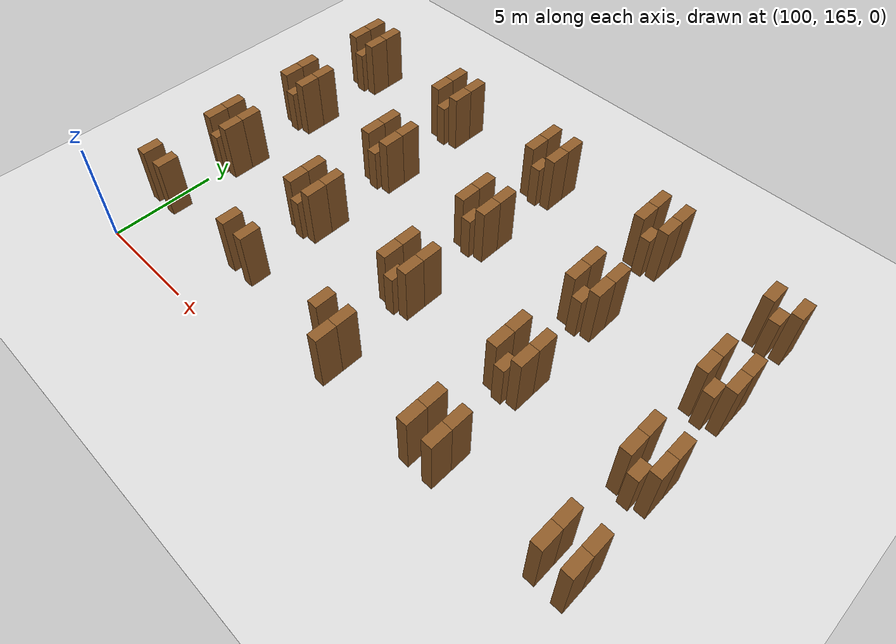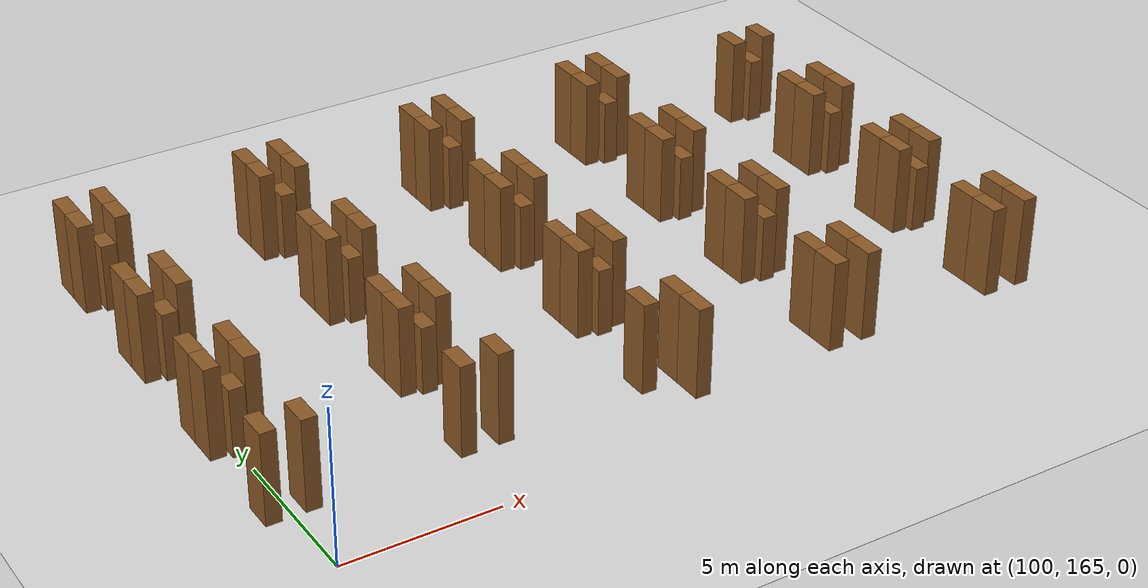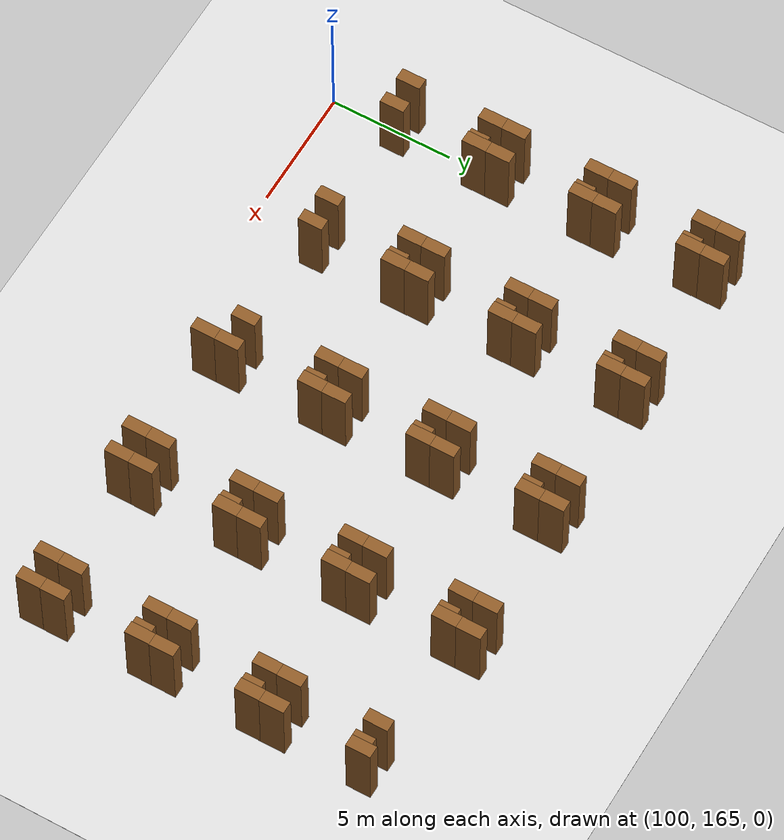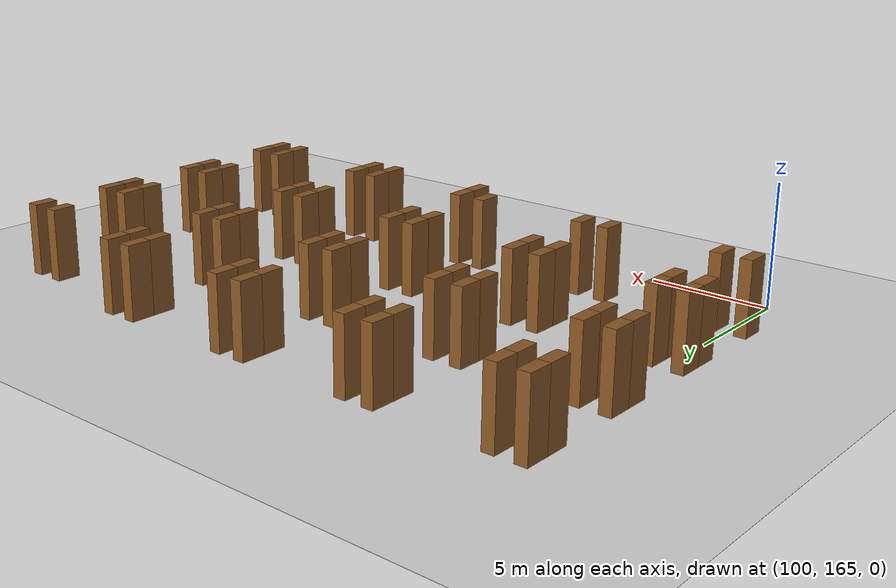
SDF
<sdf version="1.9">
 <world name="realistic_warehouse_150x200m">
  <model name="ground_plane">
   <static>true</static>
   <pose>68.5 102.0 0 0 0 0</pose>
   <link name="ground_link">
    <visual name="ground_visual">
     <geometry><box><size>127.0 194.0 0.01</size></box></geometry>
     <material><ambient>0.85 0.85 0.85 1.0</ambient><diffuse>0.85 0.85 0.85 1.0</diffuse></material>
    </visual>
    <collision name="ground_visual_collision">
     <geometry><box><size>127.0 194.0 0.01</size></box></geometry>
    </collision>
    <collision name="ground_collision">
     <geometry><plane><normal>0 0 1</normal><size>127.0 194.0</size></plane></geometry>
    </collision>
   </link>
  </model>
  <model name="rack_Zone_C_A0_S1_464">
   <static>true</static>
   <pose>99.4 168.0 1.5 0 0 0</pose>
   <link name="rack_Zone_C_A0_S1_464_link">
    <visual name="rack_Zone_C_A0_S1_464_vis">
     <geometry><box><size>0.5 1.0 3.0</size></box></geometry>
     <material><ambient>0.55 0.35 0.15 1.0</ambient><diffuse>0.55 0.35 0.15 1.0</diffuse></material>
    </visual>
    <collision name="rack_Zone_C_A0_S1_464_vis_collision">
     <geometry><box><size>0.5 1.0 3.0</size></box></geometry>
    </collision>
   </link>
  </model>
  <model name="rack_Zone_C_A0_S1_466">
   <static>true</static>
   <pose>100.6 168.0 1.5 0 0 0</pose>
   <link name="rack_Zone_C_A0_S1_466_link">
    <visual name="rack_Zone_C_A0_S1_466_vis">
     <geometry><box><size>0.5 1.0 3.0</size></box></geometry>
     <material><ambient>0.55 0.35 0.15 1.0</ambient><diffuse>0.55 0.35 0.15 1.0</diffuse></material>
    </visual>
    <collision name="rack_Zone_C_A0_S1_466_vis_collision">
     <geometry><box><size>0.5 1.0 3.0</size></box></geometry>
    </collision>
   </link>
  </model>
  <model name="rack_Zone_C_A0_S2_468">
   <static>true</static>
   <pose>99.4 171.5 1.5 0 0 0</pose>
   <link name="rack_Zone_C_A0_S2_468_link">
    <visual name="rack_Zone_C_A0_S2_468_vis">
     <geometry><box><size>0.5 1.0 3.0</size></box></geometry>
     <material><ambient>0.55 0.35 0.15 1.0</ambient><diffuse>0.55 0.35 0.15 1.0</diffuse></material>
    </visual>
    <collision name="rack_Zone_C_A0_S2_468_vis_collision">
     <geometry><box><size>0.5 1.0 3.0</size></box></geometry>
    </collision>
   </link>
  </model>
  <model name="rack_Zone_C_A0_S2_469">
   <static>true</static>
   <pose>99.4 172.5 1.5 0 0 0</pose>
   <link name="rack_Zone_C_A0_S2_469_link">
    <visual name="rack_Zone_C_A0_S2_469_vis">
     <geometry><box><size>0.5 1.0 3.0</size></box></geometry>
     <material><ambient>0.55 0.35 0.15 1.0</ambient><diffuse>0.55 0.35 0.15 1.0</diffuse></material>
    </visual>
    <collision name="rack_Zone_C_A0_S2_469_vis_collision">
     <geometry><box><size>0.5 1.0 3.0</size></box></geometry>
    </collision>
   </link>
  </model>
  <model name="rack_Zone_C_A0_S2_470">
   <static>true</static>
   <pose>100.6 171.5 1.5 0 0 0</pose>
   <link name="rack_Zone_C_A0_S2_470_link">
    <visual name="rack_Zone_C_A0_S2_470_vis">
     <geometry><box><size>0.5 1.0 3.0</size></box></geometry>
     <material><ambient>0.55 0.35 0.15 1.0</ambient><diffuse>0.55 0.35 0.15 1.0</diffuse></material>
    </visual>
    <collision name="rack_Zone_C_A0_S2_470_vis_collision">
     <geometry><box><size>0.5 1.0 3.0</size></box></geometry>
    </collision>
   </link>
  </model>
  <model name="rack_Zone_C_A0_S2_471">
   <static>true</static>
   <pose>100.6 172.5 1.5 0 0 0</pose>
   <link name="rack_Zone_C_A0_S2_471_link">
    <visual name="rack_Zone_C_A0_S2_471_vis">
     <geometry><box><size>0.5 1.0 3.0</size></box></geometry>
     <material><ambient>0.55 0.35 0.15 1.0</ambient><diffuse>0.55 0.35 0.15 1.0</diffuse></material>
    </visual>
    <collision name="rack_Zone_C_A0_S2_471_vis_collision">
     <geometry><box><size>0.5 1.0 3.0</size></box></geometry>
    </collision>
   </link>
  </model>
  <model name="rack_Zone_C_A0_S2_472">
   <static>true</static>
   <pose>100.0 171.2 1.125 0 0 0</pose>
   <link name="rack_Zone_C_A0_S2_472_link">
    <visual name="rack_Zone_C_A0_S2_472_vis">
     <geometry><box><size>0.5 0.8 2.25</size></box></geometry>
     <material><ambient>0.55 0.35 0.15 1.0</ambient><diffuse>0.55 0.35 0.15 1.0</diffuse></material>
    </visual>
    <collision name="rack_Zone_C_A0_S2_472_vis_collision">
     <geometry><box><size>0.5 0.8 2.25</size></box></geometry>
    </collision>
   </link>
  </model>
  <model name="rack_Zone_C_A0_S3_473">
   <static>true</static>
   <pose>99.4 176.0 1.5 0 0 0</pose>
   <link name="rack_Zone_C_A0_S3_473_link">
    <visual name="rack_Zone_C_A0_S3_473_vis">
     <geometry><box><size>0.5 1.0 3.0</size></box></geometry>
     <material><ambient>0.55 0.35 0.15 1.0</ambient><diffuse>0.55 0.35 0.15 1.0</diffuse></material>
    </visual>
    <collision name="rack_Zone_C_A0_S3_473_vis_collision">
     <geometry><box><size>0.5 1.0 3.0</size></box></geometry>
    </collision>
   </link>
  </model>
  <model name="rack_Zone_C_A0_S3_474">
   <static>true</static>
   <pose>99.4 177.0 1.5 0 0 0</pose>
   <link name="rack_Zone_C_A0_S3_474_link">
    <visual name="rack_Zone_C_A0_S3_474_vis">
     <geometry><box><size>0.5 1.0 3.0</size></box></geometry>
     <material><ambient>0.55 0.35 0.15 1.0</ambient><diffuse>0.55 0.35 0.15 1.0</diffuse></material>
    </visual>
    <collision name="rack_Zone_C_A0_S3_474_vis_collision">
     <geometry><box><size>0.5 1.0 3.0</size></box></geometry>
    </collision>
   </link>
  </model>
  <model name="rack_Zone_C_A0_S3_475">
   <static>true</static>
   <pose>100.6 176.0 1.5 0 0 0</pose>
   <link name="rack_Zone_C_A0_S3_475_link">
    <visual name="rack_Zone_C_A0_S3_475_vis">
     <geometry><box><size>0.5 1.0 3.0</size></box></geometry>
     <material><ambient>0.55 0.35 0.15 1.0</ambient><diffuse>0.55 0.35 0.15 1.0</diffuse></material>
    </visual>
    <collision name="rack_Zone_C_A0_S3_475_vis_collision">
     <geometry><box><size>0.5 1.0 3.0</size></box></geometry>
    </collision>
   </link>
  </model>
  <model name="rack_Zone_C_A0_S3_476">
   <static>true</static>
   <pose>100.6 177.0 1.5 0 0 0</pose>
   <link name="rack_Zone_C_A0_S3_476_link">
    <visual name="rack_Zone_C_A0_S3_476_vis">
     <geometry><box><size>0.5 1.0 3.0</size></box></geometry>
     <material><ambient>0.55 0.35 0.15 1.0</ambient><diffuse>0.55 0.35 0.15 1.0</diffuse></material>
    </visual>
    <collision name="rack_Zone_C_A0_S3_476_vis_collision">
     <geometry><box><size>0.5 1.0 3.0</size></box></geometry>
    </collision>
   </link>
  </model>
  <model name="rack_Zone_C_A0_S3_477">
   <static>true</static>
   <pose>100.0 175.7 1.125 0 0 0</pose>
   <link name="rack_Zone_C_A0_S3_477_link">
    <visual name="rack_Zone_C_A0_S3_477_vis">
     <geometry><box><size>0.5 0.8 2.25</size></box></geometry>
     <material><ambient>0.55 0.35 0.15 1.0</ambient><diffuse>0.55 0.35 0.15 1.0</diffuse></material>
    </visual>
    <collision name="rack_Zone_C_A0_S3_477_vis_collision">
     <geometry><box><size>0.5 0.8 2.25</size></box></geometry>
    </collision>
   </link>
  </model>
  <model name="rack_Zone_C_A0_S4_478">
   <static>true</static>
   <pose>99.4 180.5 1.5 0 0 0</pose>
   <link name="rack_Zone_C_A0_S4_478_link">
    <visual name="rack_Zone_C_A0_S4_478_vis">
     <geometry><box><size>0.5 1.0 3.0</size></box></geometry>
     <material><ambient>0.55 0.35 0.15 1.0</ambient><diffuse>0.55 0.35 0.15 1.0</diffuse></material>
    </visual>
    <collision name="rack_Zone_C_A0_S4_478_vis_collision">
     <geometry><box><size>0.5 1.0 3.0</size></box></geometry>
    </collision>
   </link>
  </model>
  <model name="rack_Zone_C_A0_S4_479">
   <static>true</static>
   <pose>99.4 181.5 1.5 0 0 0</pose>
   <link name="rack_Zone_C_A0_S4_479_link">
    <visual name="rack_Zone_C_A0_S4_479_vis">
     <geometry><box><size>0.5 1.0 3.0</size></box></geometry>
     <material><ambient>0.55 0.35 0.15 1.0</ambient><diffuse>0.55 0.35 0.15 1.0</diffuse></material>
    </visual>
    <collision name="rack_Zone_C_A0_S4_479_vis_collision">
     <geometry><box><size>0.5 1.0 3.0</size></box></geometry>
    </collision>
   </link>
  </model>
  <model name="rack_Zone_C_A0_S4_480">
   <static>true</static>
   <pose>100.6 180.5 1.5 0 0 0</pose>
   <link name="rack_Zone_C_A0_S4_480_link">
    <visual name="rack_Zone_C_A0_S4_480_vis">
     <geometry><box><size>0.5 1.0 3.0</size></box></geometry>
     <material><ambient>0.55 0.35 0.15 1.0</ambient><diffuse>0.55 0.35 0.15 1.0</diffuse></material>
    </visual>
    <collision name="rack_Zone_C_A0_S4_480_vis_collision">
     <geometry><box><size>0.5 1.0 3.0</size></box></geometry>
    </collision>
   </link>
  </model>
  <model name="rack_Zone_C_A0_S4_481">
   <static>true</static>
   <pose>100.6 181.5 1.5 0 0 0</pose>
   <link name="rack_Zone_C_A0_S4_481_link">
    <visual name="rack_Zone_C_A0_S4_481_vis">
     <geometry><box><size>0.5 1.0 3.0</size></box></geometry>
     <material><ambient>0.55 0.35 0.15 1.0</ambient><diffuse>0.55 0.35 0.15 1.0</diffuse></material>
    </visual>
    <collision name="rack_Zone_C_A0_S4_481_vis_collision">
     <geometry><box><size>0.5 1.0 3.0</size></box></geometry>
    </collision>
   </link>
  </model>
  <model name="rack_Zone_C_A0_S4_482">
   <static>true</static>
   <pose>100.0 180.2 1.125 0 0 0</pose>
   <link name="rack_Zone_C_A0_S4_482_link">
    <visual name="rack_Zone_C_A0_S4_482_vis">
     <geometry><box><size>0.5 0.8 2.25</size></box></geometry>
     <material><ambient>0.55 0.35 0.15 1.0</ambient><diffuse>0.55 0.35 0.15 1.0</diffuse></material>
    </visual>
    <collision name="rack_Zone_C_A0_S4_482_vis_collision">
     <geometry><box><size>0.5 0.8 2.25</size></box></geometry>
    </collision>
   </link>
  </model>
  <model name="rack_Zone_C_A1_S1_508">
   <static>true</static>
   <pose>105.4 168.0 1.5 0 0 0</pose>
   <link name="rack_Zone_C_A1_S1_508_link">
    <visual name="rack_Zone_C_A1_S1_508_vis">
     <geometry><box><size>0.5 1.0 3.0</size></box></geometry>
     <material><ambient>0.55 0.35 0.15 1.0</ambient><diffuse>0.55 0.35 0.15 1.0</diffuse></material>
    </visual>
    <collision name="rack_Zone_C_A1_S1_508_vis_collision">
     <geometry><box><size>0.5 1.0 3.0</size></box></geometry>
    </collision>
   </link>
  </model>
  <model name="rack_Zone_C_A1_S1_510">
   <static>true</static>
   <pose>106.6 168.0 1.5 0 0 0</pose>
   <link name="rack_Zone_C_A1_S1_510_link">
    <visual name="rack_Zone_C_A1_S1_510_vis">
     <geometry><box><size>0.5 1.0 3.0</size></box></geometry>
     <material><ambient>0.55 0.35 0.15 1.0</ambient><diffuse>0.55 0.35 0.15 1.0</diffuse></material>
    </visual>
    <collision name="rack_Zone_C_A1_S1_510_vis_collision">
     <geometry><box><size>0.5 1.0 3.0</size></box></geometry>
    </collision>
   </link>
  </model>
  <model name="rack_Zone_C_A1_S2_512">
   <static>true</static>
   <pose>105.4 171.5 1.5 0 0 0</pose>
   <link name="rack_Zone_C_A1_S2_512_link">
    <visual name="rack_Zone_C_A1_S2_512_vis">
     <geometry><box><size>0.5 1.0 3.0</size></box></geometry>
     <material><ambient>0.55 0.35 0.15 1.0</ambient><diffuse>0.55 0.35 0.15 1.0</diffuse></material>
    </visual>
    <collision name="rack_Zone_C_A1_S2_512_vis_collision">
     <geometry><box><size>0.5 1.0 3.0</size></box></geometry>
    </collision>
   </link>
  </model>
  <model name="rack_Zone_C_A1_S2_513">
   <static>true</static>
   <pose>105.4 172.5 1.5 0 0 0</pose>
   <link name="rack_Zone_C_A1_S2_513_link">
    <visual name="rack_Zone_C_A1_S2_513_vis">
     <geometry><box><size>0.5 1.0 3.0</size></box></geometry>
     <material><ambient>0.55 0.35 0.15 1.0</ambient><diffuse>0.55 0.35 0.15 1.0</diffuse></material>
    </visual>
    <collision name="rack_Zone_C_A1_S2_513_vis_collision">
     <geometry><box><size>0.5 1.0 3.0</size></box></geometry>
    </collision>
   </link>
  </model>
  <model name="rack_Zone_C_A1_S2_514">
   <static>true</static>
   <pose>106.6 171.5 1.5 0 0 0</pose>
   <link name="rack_Zone_C_A1_S2_514_link">
    <visual name="rack_Zone_C_A1_S2_514_vis">
     <geometry><box><size>0.5 1.0 3.0</size></box></geometry>
     <material><ambient>0.55 0.35 0.15 1.0</ambient><diffuse>0.55 0.35 0.15 1.0</diffuse></material>
    </visual>
    <collision name="rack_Zone_C_A1_S2_514_vis_collision">
     <geometry><box><size>0.5 1.0 3.0</size></box></geometry>
    </collision>
   </link>
  </model>
  <model name="rack_Zone_C_A1_S2_515">
   <static>true</static>
   <pose>106.6 172.5 1.5 0 0 0</pose>
   <link name="rack_Zone_C_A1_S2_515_link">
    <visual name="rack_Zone_C_A1_S2_515_vis">
     <geometry><box><size>0.5 1.0 3.0</size></box></geometry>
     <material><ambient>0.55 0.35 0.15 1.0</ambient><diffuse>0.55 0.35 0.15 1.0</diffuse></material>
    </visual>
    <collision name="rack_Zone_C_A1_S2_515_vis_collision">
     <geometry><box><size>0.5 1.0 3.0</size></box></geometry>
    </collision>
   </link>
  </model>
  <model name="rack_Zone_C_A1_S2_516">
   <static>true</static>
   <pose>106.0 171.2 1.125 0 0 0</pose>
   <link name="rack_Zone_C_A1_S2_516_link">
    <visual name="rack_Zone_C_A1_S2_516_vis">
     <geometry><box><size>0.5 0.8 2.25</size></box></geometry>
     <material><ambient>0.55 0.35 0.15 1.0</ambient><diffuse>0.55 0.35 0.15 1.0</diffuse></material>
    </visual>
    <collision name="rack_Zone_C_A1_S2_516_vis_collision">
     <geometry><box><size>0.5 0.8 2.25</size></box></geometry>
    </collision>
   </link>
  </model>
  <model name="rack_Zone_C_A1_S3_517">
   <static>true</static>
   <pose>105.4 176.0 1.5 0 0 0</pose>
   <link name="rack_Zone_C_A1_S3_517_link">
    <visual name="rack_Zone_C_A1_S3_517_vis">
     <geometry><box><size>0.5 1.0 3.0</size></box></geometry>
     <material><ambient>0.55 0.35 0.15 1.0</ambient><diffuse>0.55 0.35 0.15 1.0</diffuse></material>
    </visual>
    <collision name="rack_Zone_C_A1_S3_517_vis_collision">
     <geometry><box><size>0.5 1.0 3.0</size></box></geometry>
    </collision>
   </link>
  </model>
  <model name="rack_Zone_C_A1_S3_518">
   <static>true</static>
   <pose>105.4 177.0 1.5 0 0 0</pose>
   <link name="rack_Zone_C_A1_S3_518_link">
    <visual name="rack_Zone_C_A1_S3_518_vis">
     <geometry><box><size>0.5 1.0 3.0</size></box></geometry>
     <material><ambient>0.55 0.35 0.15 1.0</ambient><diffuse>0.55 0.35 0.15 1.0</diffuse></material>
    </visual>
    <collision name="rack_Zone_C_A1_S3_518_vis_collision">
     <geometry><box><size>0.5 1.0 3.0</size></box></geometry>
    </collision>
   </link>
  </model>
  <model name="rack_Zone_C_A1_S3_519">
   <static>true</static>
   <pose>106.6 176.0 1.5 0 0 0</pose>
   <link name="rack_Zone_C_A1_S3_519_link">
    <visual name="rack_Zone_C_A1_S3_519_vis">
     <geometry><box><size>0.5 1.0 3.0</size></box></geometry>
     <material><ambient>0.55 0.35 0.15 1.0</ambient><diffuse>0.55 0.35 0.15 1.0</diffuse></material>
    </visual>
    <collision name="rack_Zone_C_A1_S3_519_vis_collision">
     <geometry><box><size>0.5 1.0 3.0</size></box></geometry>
    </collision>
   </link>
  </model>
  <model name="rack_Zone_C_A1_S3_520">
   <static>true</static>
   <pose>106.6 177.0 1.5 0 0 0</pose>
   <link name="rack_Zone_C_A1_S3_520_link">
    <visual name="rack_Zone_C_A1_S3_520_vis">
     <geometry><box><size>0.5 1.0 3.0</size></box></geometry>
     <material><ambient>0.55 0.35 0.15 1.0</ambient><diffuse>0.55 0.35 0.15 1.0</diffuse></material>
    </visual>
    <collision name="rack_Zone_C_A1_S3_520_vis_collision">
     <geometry><box><size>0.5 1.0 3.0</size></box></geometry>
    </collision>
   </link>
  </model>
  <model name="rack_Zone_C_A1_S3_521">
   <static>true</static>
   <pose>106.0 175.7 1.125 0 0 0</pose>
   <link name="rack_Zone_C_A1_S3_521_link">
    <visual name="rack_Zone_C_A1_S3_521_vis">
     <geometry><box><size>0.5 0.8 2.25</size></box></geometry>
     <material><ambient>0.55 0.35 0.15 1.0</ambient><diffuse>0.55 0.35 0.15 1.0</diffuse></material>
    </visual>
    <collision name="rack_Zone_C_A1_S3_521_vis_collision">
     <geometry><box><size>0.5 0.8 2.25</size></box></geometry>
    </collision>
   </link>
  </model>
  <model name="rack_Zone_C_A1_S4_522">
   <static>true</static>
   <pose>105.4 180.5 1.5 0 0 0</pose>
   <link name="rack_Zone_C_A1_S4_522_link">
    <visual name="rack_Zone_C_A1_S4_522_vis">
     <geometry><box><size>0.5 1.0 3.0</size></box></geometry>
     <material><ambient>0.55 0.35 0.15 1.0</ambient><diffuse>0.55 0.35 0.15 1.0</diffuse></material>
    </visual>
    <collision name="rack_Zone_C_A1_S4_522_vis_collision">
     <geometry><box><size>0.5 1.0 3.0</size></box></geometry>
    </collision>
   </link>
  </model>
  <model name="rack_Zone_C_A1_S4_523">
   <static>true</static>
   <pose>105.4 181.5 1.5 0 0 0</pose>
   <link name="rack_Zone_C_A1_S4_523_link">
    <visual name="rack_Zone_C_A1_S4_523_vis">
     <geometry><box><size>0.5 1.0 3.0</size></box></geometry>
     <material><ambient>0.55 0.35 0.15 1.0</ambient><diffuse>0.55 0.35 0.15 1.0</diffuse></material>
    </visual>
    <collision name="rack_Zone_C_A1_S4_523_vis_collision">
     <geometry><box><size>0.5 1.0 3.0</size></box></geometry>
    </collision>
   </link>
  </model>
  <model name="rack_Zone_C_A1_S4_524">
   <static>true</static>
   <pose>106.6 180.5 1.5 0 0 0</pose>
   <link name="rack_Zone_C_A1_S4_524_link">
    <visual name="rack_Zone_C_A1_S4_524_vis">
     <geometry><box><size>0.5 1.0 3.0</size></box></geometry>
     <material><ambient>0.55 0.35 0.15 1.0</ambient><diffuse>0.55 0.35 0.15 1.0</diffuse></material>
    </visual>
    <collision name="rack_Zone_C_A1_S4_524_vis_collision">
     <geometry><box><size>0.5 1.0 3.0</size></box></geometry>
    </collision>
   </link>
  </model>
  <model name="rack_Zone_C_A1_S4_525">
   <static>true</static>
   <pose>106.6 181.5 1.5 0 0 0</pose>
   <link name="rack_Zone_C_A1_S4_525_link">
    <visual name="rack_Zone_C_A1_S4_525_vis">
     <geometry><box><size>0.5 1.0 3.0</size></box></geometry>
     <material><ambient>0.55 0.35 0.15 1.0</ambient><diffuse>0.55 0.35 0.15 1.0</diffuse></material>
    </visual>
    <collision name="rack_Zone_C_A1_S4_525_vis_collision">
     <geometry><box><size>0.5 1.0 3.0</size></box></geometry>
    </collision>
   </link>
  </model>
  <model name="rack_Zone_C_A1_S4_526">
   <static>true</static>
   <pose>106.0 180.2 1.125 0 0 0</pose>
   <link name="rack_Zone_C_A1_S4_526_link">
    <visual name="rack_Zone_C_A1_S4_526_vis">
     <geometry><box><size>0.5 0.8 2.25</size></box></geometry>
     <material><ambient>0.55 0.35 0.15 1.0</ambient><diffuse>0.55 0.35 0.15 1.0</diffuse></material>
    </visual>
    <collision name="rack_Zone_C_A1_S4_526_vis_collision">
     <geometry><box><size>0.5 0.8 2.25</size></box></geometry>
    </collision>
   </link>
  </model>
  <model name="rack_Zone_C_A2_S1_552">
   <static>true</static>
   <pose>111.4 168.0 1.5 0 0 0</pose>
   <link name="rack_Zone_C_A2_S1_552_link">
    <visual name="rack_Zone_C_A2_S1_552_vis">
     <geometry><box><size>0.5 1.0 3.0</size></box></geometry>
     <material><ambient>0.55 0.35 0.15 1.0</ambient><diffuse>0.55 0.35 0.15 1.0</diffuse></material>
    </visual>
    <collision name="rack_Zone_C_A2_S1_552_vis_collision">
     <geometry><box><size>0.5 1.0 3.0</size></box></geometry>
    </collision>
   </link>
  </model>
  <model name="rack_Zone_C_A2_S1_553">
   <static>true</static>
   <pose>112.6 167.0 1.5 0 0 0</pose>
   <link name="rack_Zone_C_A2_S1_553_link">
    <visual name="rack_Zone_C_A2_S1_553_vis">
     <geometry><box><size>0.5 1.0 3.0</size></box></geometry>
     <material><ambient>0.55 0.35 0.15 1.0</ambient><diffuse>0.55 0.35 0.15 1.0</diffuse></material>
    </visual>
    <collision name="rack_Zone_C_A2_S1_553_vis_collision">
     <geometry><box><size>0.5 1.0 3.0</size></box></geometry>
    </collision>
   </link>
  </model>
  <model name="rack_Zone_C_A2_S1_554">
   <static>true</static>
   <pose>112.6 168.0 1.5 0 0 0</pose>
   <link name="rack_Zone_C_A2_S1_554_link">
    <visual name="rack_Zone_C_A2_S1_554_vis">
     <geometry><box><size>0.5 1.0 3.0</size></box></geometry>
     <material><ambient>0.55 0.35 0.15 1.0</ambient><diffuse>0.55 0.35 0.15 1.0</diffuse></material>
    </visual>
    <collision name="rack_Zone_C_A2_S1_554_vis_collision">
     <geometry><box><size>0.5 1.0 3.0</size></box></geometry>
    </collision>
   </link>
  </model>
  <model name="rack_Zone_C_A2_S2_556">
   <static>true</static>
   <pose>111.4 171.5 1.5 0 0 0</pose>
   <link name="rack_Zone_C_A2_S2_556_link">
    <visual name="rack_Zone_C_A2_S2_556_vis">
     <geometry><box><size>0.5 1.0 3.0</size></box></geometry>
     <material><ambient>0.55 0.35 0.15 1.0</ambient><diffuse>0.55 0.35 0.15 1.0</diffuse></material>
    </visual>
    <collision name="rack_Zone_C_A2_S2_556_vis_collision">
     <geometry><box><size>0.5 1.0 3.0</size></box></geometry>
    </collision>
   </link>
  </model>
  <model name="rack_Zone_C_A2_S2_557">
   <static>true</static>
   <pose>111.4 172.5 1.5 0 0 0</pose>
   <link name="rack_Zone_C_A2_S2_557_link">
    <visual name="rack_Zone_C_A2_S2_557_vis">
     <geometry><box><size>0.5 1.0 3.0</size></box></geometry>
     <material><ambient>0.55 0.35 0.15 1.0</ambient><diffuse>0.55 0.35 0.15 1.0</diffuse></material>
    </visual>
    <collision name="rack_Zone_C_A2_S2_557_vis_collision">
     <geometry><box><size>0.5 1.0 3.0</size></box></geometry>
    </collision>
   </link>
  </model>
  <model name="rack_Zone_C_A2_S2_558">
   <static>true</static>
   <pose>112.6 171.5 1.5 0 0 0</pose>
   <link name="rack_Zone_C_A2_S2_558_link">
    <visual name="rack_Zone_C_A2_S2_558_vis">
     <geometry><box><size>0.5 1.0 3.0</size></box></geometry>
     <material><ambient>0.55 0.35 0.15 1.0</ambient><diffuse>0.55 0.35 0.15 1.0</diffuse></material>
    </visual>
    <collision name="rack_Zone_C_A2_S2_558_vis_collision">
     <geometry><box><size>0.5 1.0 3.0</size></box></geometry>
    </collision>
   </link>
  </model>
  <model name="rack_Zone_C_A2_S2_559">
   <static>true</static>
   <pose>112.6 172.5 1.5 0 0 0</pose>
   <link name="rack_Zone_C_A2_S2_559_link">
    <visual name="rack_Zone_C_A2_S2_559_vis">
     <geometry><box><size>0.5 1.0 3.0</size></box></geometry>
     <material><ambient>0.55 0.35 0.15 1.0</ambient><diffuse>0.55 0.35 0.15 1.0</diffuse></material>
    </visual>
    <collision name="rack_Zone_C_A2_S2_559_vis_collision">
     <geometry><box><size>0.5 1.0 3.0</size></box></geometry>
    </collision>
   </link>
  </model>
  <model name="rack_Zone_C_A2_S2_560">
   <static>true</static>
   <pose>112.0 171.2 1.125 0 0 0</pose>
   <link name="rack_Zone_C_A2_S2_560_link">
    <visual name="rack_Zone_C_A2_S2_560_vis">
     <geometry><box><size>0.5 0.8 2.25</size></box></geometry>
     <material><ambient>0.55 0.35 0.15 1.0</ambient><diffuse>0.55 0.35 0.15 1.0</diffuse></material>
    </visual>
    <collision name="rack_Zone_C_A2_S2_560_vis_collision">
     <geometry><box><size>0.5 0.8 2.25</size></box></geometry>
    </collision>
   </link>
  </model>
  <model name="rack_Zone_C_A2_S3_561">
   <static>true</static>
   <pose>111.4 176.0 1.5 0 0 0</pose>
   <link name="rack_Zone_C_A2_S3_561_link">
    <visual name="rack_Zone_C_A2_S3_561_vis">
     <geometry><box><size>0.5 1.0 3.0</size></box></geometry>
     <material><ambient>0.55 0.35 0.15 1.0</ambient><diffuse>0.55 0.35 0.15 1.0</diffuse></material>
    </visual>
    <collision name="rack_Zone_C_A2_S3_561_vis_collision">
     <geometry><box><size>0.5 1.0 3.0</size></box></geometry>
    </collision>
   </link>
  </model>
  <model name="rack_Zone_C_A2_S3_562">
   <static>true</static>
   <pose>111.4 177.0 1.5 0 0 0</pose>
   <link name="rack_Zone_C_A2_S3_562_link">
    <visual name="rack_Zone_C_A2_S3_562_vis">
     <geometry><box><size>0.5 1.0 3.0</size></box></geometry>
     <material><ambient>0.55 0.35 0.15 1.0</ambient><diffuse>0.55 0.35 0.15 1.0</diffuse></material>
    </visual>
    <collision name="rack_Zone_C_A2_S3_562_vis_collision">
     <geometry><box><size>0.5 1.0 3.0</size></box></geometry>
    </collision>
   </link>
  </model>
  <model name="rack_Zone_C_A2_S3_563">
   <static>true</static>
   <pose>112.6 176.0 1.5 0 0 0</pose>
   <link name="rack_Zone_C_A2_S3_563_link">
    <visual name="rack_Zone_C_A2_S3_563_vis">
     <geometry><box><size>0.5 1.0 3.0</size></box></geometry>
     <material><ambient>0.55 0.35 0.15 1.0</ambient><diffuse>0.55 0.35 0.15 1.0</diffuse></material>
    </visual>
    <collision name="rack_Zone_C_A2_S3_563_vis_collision">
     <geometry><box><size>0.5 1.0 3.0</size></box></geometry>
    </collision>
   </link>
  </model>
  <model name="rack_Zone_C_A2_S3_564">
   <static>true</static>
   <pose>112.6 177.0 1.5 0 0 0</pose>
   <link name="rack_Zone_C_A2_S3_564_link">
    <visual name="rack_Zone_C_A2_S3_564_vis">
     <geometry><box><size>0.5 1.0 3.0</size></box></geometry>
     <material><ambient>0.55 0.35 0.15 1.0</ambient><diffuse>0.55 0.35 0.15 1.0</diffuse></material>
    </visual>
    <collision name="rack_Zone_C_A2_S3_564_vis_collision">
     <geometry><box><size>0.5 1.0 3.0</size></box></geometry>
    </collision>
   </link>
  </model>
  <model name="rack_Zone_C_A2_S3_565">
   <static>true</static>
   <pose>112.0 175.7 1.125 0 0 0</pose>
   <link name="rack_Zone_C_A2_S3_565_link">
    <visual name="rack_Zone_C_A2_S3_565_vis">
     <geometry><box><size>0.5 0.8 2.25</size></box></geometry>
     <material><ambient>0.55 0.35 0.15 1.0</ambient><diffuse>0.55 0.35 0.15 1.0</diffuse></material>
    </visual>
    <collision name="rack_Zone_C_A2_S3_565_vis_collision">
     <geometry><box><size>0.5 0.8 2.25</size></box></geometry>
    </collision>
   </link>
  </model>
  <model name="rack_Zone_C_A2_S4_566">
   <static>true</static>
   <pose>111.4 180.5 1.5 0 0 0</pose>
   <link name="rack_Zone_C_A2_S4_566_link">
    <visual name="rack_Zone_C_A2_S4_566_vis">
     <geometry><box><size>0.5 1.0 3.0</size></box></geometry>
     <material><ambient>0.55 0.35 0.15 1.0</ambient><diffuse>0.55 0.35 0.15 1.0</diffuse></material>
    </visual>
    <collision name="rack_Zone_C_A2_S4_566_vis_collision">
     <geometry><box><size>0.5 1.0 3.0</size></box></geometry>
    </collision>
   </link>
  </model>
  <model name="rack_Zone_C_A2_S4_567">
   <static>true</static>
   <pose>111.4 181.5 1.5 0 0 0</pose>
   <link name="rack_Zone_C_A2_S4_567_link">
    <visual name="rack_Zone_C_A2_S4_567_vis">
     <geometry><box><size>0.5 1.0 3.0</size></box></geometry>
     <material><ambient>0.55 0.35 0.15 1.0</ambient><diffuse>0.55 0.35 0.15 1.0</diffuse></material>
    </visual>
    <collision name="rack_Zone_C_A2_S4_567_vis_collision">
     <geometry><box><size>0.5 1.0 3.0</size></box></geometry>
    </collision>
   </link>
  </model>
  <model name="rack_Zone_C_A2_S4_568">
   <static>true</static>
   <pose>112.6 180.5 1.5 0 0 0</pose>
   <link name="rack_Zone_C_A2_S4_568_link">
    <visual name="rack_Zone_C_A2_S4_568_vis">
     <geometry><box><size>0.5 1.0 3.0</size></box></geometry>
     <material><ambient>0.55 0.35 0.15 1.0</ambient><diffuse>0.55 0.35 0.15 1.0</diffuse></material>
    </visual>
    <collision name="rack_Zone_C_A2_S4_568_vis_collision">
     <geometry><box><size>0.5 1.0 3.0</size></box></geometry>
    </collision>
   </link>
  </model>
  <model name="rack_Zone_C_A2_S4_569">
   <static>true</static>
   <pose>112.6 181.5 1.5 0 0 0</pose>
   <link name="rack_Zone_C_A2_S4_569_link">
    <visual name="rack_Zone_C_A2_S4_569_vis">
     <geometry><box><size>0.5 1.0 3.0</size></box></geometry>
     <material><ambient>0.55 0.35 0.15 1.0</ambient><diffuse>0.55 0.35 0.15 1.0</diffuse></material>
    </visual>
    <collision name="rack_Zone_C_A2_S4_569_vis_collision">
     <geometry><box><size>0.5 1.0 3.0</size></box></geometry>
    </collision>
   </link>
  </model>
  <model name="rack_Zone_C_A2_S4_570">
   <static>true</static>
   <pose>112.0 180.2 1.125 0 0 0</pose>
   <link name="rack_Zone_C_A2_S4_570_link">
    <visual name="rack_Zone_C_A2_S4_570_vis">
     <geometry><box><size>0.5 0.8 2.25</size></box></geometry>
     <material><ambient>0.55 0.35 0.15 1.0</ambient><diffuse>0.55 0.35 0.15 1.0</diffuse></material>
    </visual>
    <collision name="rack_Zone_C_A2_S4_570_vis_collision">
     <geometry><box><size>0.5 0.8 2.25</size></box></geometry>
    </collision>
   </link>
  </model>
  <model name="rack_Zone_C_A3_S1_595">
   <static>true</static>
   <pose>117.4 167.0 1.5 0 0 0</pose>
   <link name="rack_Zone_C_A3_S1_595_link">
    <visual name="rack_Zone_C_A3_S1_595_vis">
     <geometry><box><size>0.5 1.0 3.0</size></box></geometry>
     <material><ambient>0.55 0.35 0.15 1.0</ambient><diffuse>0.55 0.35 0.15 1.0</diffuse></material>
    </visual>
    <collision name="rack_Zone_C_A3_S1_595_vis_collision">
     <geometry><box><size>0.5 1.0 3.0</size></box></geometry>
    </collision>
   </link>
  </model>
  <model name="rack_Zone_C_A3_S1_596">
   <static>true</static>
   <pose>117.4 168.0 1.5 0 0 0</pose>
   <link name="rack_Zone_C_A3_S1_596_link">
    <visual name="rack_Zone_C_A3_S1_596_vis">
     <geometry><box><size>0.5 1.0 3.0</size></box></geometry>
     <material><ambient>0.55 0.35 0.15 1.0</ambient><diffuse>0.55 0.35 0.15 1.0</diffuse></material>
    </visual>
    <collision name="rack_Zone_C_A3_S1_596_vis_collision">
     <geometry><box><size>0.5 1.0 3.0</size></box></geometry>
    </collision>
   </link>
  </model>
  <model name="rack_Zone_C_A3_S1_597">
   <static>true</static>
   <pose>118.6 167.0 1.5 0 0 0</pose>
   <link name="rack_Zone_C_A3_S1_597_link">
    <visual name="rack_Zone_C_A3_S1_597_vis">
     <geometry><box><size>0.5 1.0 3.0</size></box></geometry>
     <material><ambient>0.55 0.35 0.15 1.0</ambient><diffuse>0.55 0.35 0.15 1.0</diffuse></material>
    </visual>
    <collision name="rack_Zone_C_A3_S1_597_vis_collision">
     <geometry><box><size>0.5 1.0 3.0</size></box></geometry>
    </collision>
   </link>
  </model>
  <model name="rack_Zone_C_A3_S1_598">
   <static>true</static>
   <pose>118.6 168.0 1.5 0 0 0</pose>
   <link name="rack_Zone_C_A3_S1_598_link">
    <visual name="rack_Zone_C_A3_S1_598_vis">
     <geometry><box><size>0.5 1.0 3.0</size></box></geometry>
     <material><ambient>0.55 0.35 0.15 1.0</ambient><diffuse>0.55 0.35 0.15 1.0</diffuse></material>
    </visual>
    <collision name="rack_Zone_C_A3_S1_598_vis_collision">
     <geometry><box><size>0.5 1.0 3.0</size></box></geometry>
    </collision>
   </link>
  </model>
  <model name="rack_Zone_C_A3_S2_600">
   <static>true</static>
   <pose>117.4 171.5 1.5 0 0 0</pose>
   <link name="rack_Zone_C_A3_S2_600_link">
    <visual name="rack_Zone_C_A3_S2_600_vis">
     <geometry><box><size>0.5 1.0 3.0</size></box></geometry>
     <material><ambient>0.55 0.35 0.15 1.0</ambient><diffuse>0.55 0.35 0.15 1.0</diffuse></material>
    </visual>
    <collision name="rack_Zone_C_A3_S2_600_vis_collision">
     <geometry><box><size>0.5 1.0 3.0</size></box></geometry>
    </collision>
   </link>
  </model>
  <model name="rack_Zone_C_A3_S2_601">
   <static>true</static>
   <pose>117.4 172.5 1.5 0 0 0</pose>
   <link name="rack_Zone_C_A3_S2_601_link">
    <visual name="rack_Zone_C_A3_S2_601_vis">
     <geometry><box><size>0.5 1.0 3.0</size></box></geometry>
     <material><ambient>0.55 0.35 0.15 1.0</ambient><diffuse>0.55 0.35 0.15 1.0</diffuse></material>
    </visual>
    <collision name="rack_Zone_C_A3_S2_601_vis_collision">
     <geometry><box><size>0.5 1.0 3.0</size></box></geometry>
    </collision>
   </link>
  </model>
  <model name="rack_Zone_C_A3_S2_602">
   <static>true</static>
   <pose>118.6 171.5 1.5 0 0 0</pose>
   <link name="rack_Zone_C_A3_S2_602_link">
    <visual name="rack_Zone_C_A3_S2_602_vis">
     <geometry><box><size>0.5 1.0 3.0</size></box></geometry>
     <material><ambient>0.55 0.35 0.15 1.0</ambient><diffuse>0.55 0.35 0.15 1.0</diffuse></material>
    </visual>
    <collision name="rack_Zone_C_A3_S2_602_vis_collision">
     <geometry><box><size>0.5 1.0 3.0</size></box></geometry>
    </collision>
   </link>
  </model>
  <model name="rack_Zone_C_A3_S2_603">
   <static>true</static>
   <pose>118.6 172.5 1.5 0 0 0</pose>
   <link name="rack_Zone_C_A3_S2_603_link">
    <visual name="rack_Zone_C_A3_S2_603_vis">
     <geometry><box><size>0.5 1.0 3.0</size></box></geometry>
     <material><ambient>0.55 0.35 0.15 1.0</ambient><diffuse>0.55 0.35 0.15 1.0</diffuse></material>
    </visual>
    <collision name="rack_Zone_C_A3_S2_603_vis_collision">
     <geometry><box><size>0.5 1.0 3.0</size></box></geometry>
    </collision>
   </link>
  </model>
  <model name="rack_Zone_C_A3_S2_604">
   <static>true</static>
   <pose>118.0 171.2 1.125 0 0 0</pose>
   <link name="rack_Zone_C_A3_S2_604_link">
    <visual name="rack_Zone_C_A3_S2_604_vis">
     <geometry><box><size>0.5 0.8 2.25</size></box></geometry>
     <material><ambient>0.55 0.35 0.15 1.0</ambient><diffuse>0.55 0.35 0.15 1.0</diffuse></material>
    </visual>
    <collision name="rack_Zone_C_A3_S2_604_vis_collision">
     <geometry><box><size>0.5 0.8 2.25</size></box></geometry>
    </collision>
   </link>
  </model>
  <model name="rack_Zone_C_A3_S3_605">
   <static>true</static>
   <pose>117.4 176.0 1.5 0 0 0</pose>
   <link name="rack_Zone_C_A3_S3_605_link">
    <visual name="rack_Zone_C_A3_S3_605_vis">
     <geometry><box><size>0.5 1.0 3.0</size></box></geometry>
     <material><ambient>0.55 0.35 0.15 1.0</ambient><diffuse>0.55 0.35 0.15 1.0</diffuse></material>
    </visual>
    <collision name="rack_Zone_C_A3_S3_605_vis_collision">
     <geometry><box><size>0.5 1.0 3.0</size></box></geometry>
    </collision>
   </link>
  </model>
  <model name="rack_Zone_C_A3_S3_606">
   <static>true</static>
   <pose>117.4 177.0 1.5 0 0 0</pose>
   <link name="rack_Zone_C_A3_S3_606_link">
    <visual name="rack_Zone_C_A3_S3_606_vis">
     <geometry><box><size>0.5 1.0 3.0</size></box></geometry>
     <material><ambient>0.55 0.35 0.15 1.0</ambient><diffuse>0.55 0.35 0.15 1.0</diffuse></material>
    </visual>
    <collision name="rack_Zone_C_A3_S3_606_vis_collision">
     <geometry><box><size>0.5 1.0 3.0</size></box></geometry>
    </collision>
   </link>
  </model>
  <model name="rack_Zone_C_A3_S3_607">
   <static>true</static>
   <pose>118.6 176.0 1.5 0 0 0</pose>
   <link name="rack_Zone_C_A3_S3_607_link">
    <visual name="rack_Zone_C_A3_S3_607_vis">
     <geometry><box><size>0.5 1.0 3.0</size></box></geometry>
     <material><ambient>0.55 0.35 0.15 1.0</ambient><diffuse>0.55 0.35 0.15 1.0</diffuse></material>
    </visual>
    <collision name="rack_Zone_C_A3_S3_607_vis_collision">
     <geometry><box><size>0.5 1.0 3.0</size></box></geometry>
    </collision>
   </link>
  </model>
  <model name="rack_Zone_C_A3_S3_608">
   <static>true</static>
   <pose>118.6 177.0 1.5 0 0 0</pose>
   <link name="rack_Zone_C_A3_S3_608_link">
    <visual name="rack_Zone_C_A3_S3_608_vis">
     <geometry><box><size>0.5 1.0 3.0</size></box></geometry>
     <material><ambient>0.55 0.35 0.15 1.0</ambient><diffuse>0.55 0.35 0.15 1.0</diffuse></material>
    </visual>
    <collision name="rack_Zone_C_A3_S3_608_vis_collision">
     <geometry><box><size>0.5 1.0 3.0</size></box></geometry>
    </collision>
   </link>
  </model>
  <model name="rack_Zone_C_A3_S3_609">
   <static>true</static>
   <pose>118.0 175.7 1.125 0 0 0</pose>
   <link name="rack_Zone_C_A3_S3_609_link">
    <visual name="rack_Zone_C_A3_S3_609_vis">
     <geometry><box><size>0.5 0.8 2.25</size></box></geometry>
     <material><ambient>0.55 0.35 0.15 1.0</ambient><diffuse>0.55 0.35 0.15 1.0</diffuse></material>
    </visual>
    <collision name="rack_Zone_C_A3_S3_609_vis_collision">
     <geometry><box><size>0.5 0.8 2.25</size></box></geometry>
    </collision>
   </link>
  </model>
  <model name="rack_Zone_C_A3_S4_610">
   <static>true</static>
   <pose>117.4 180.5 1.5 0 0 0</pose>
   <link name="rack_Zone_C_A3_S4_610_link">
    <visual name="rack_Zone_C_A3_S4_610_vis">
     <geometry><box><size>0.5 1.0 3.0</size></box></geometry>
     <material><ambient>0.55 0.35 0.15 1.0</ambient><diffuse>0.55 0.35 0.15 1.0</diffuse></material>
    </visual>
    <collision name="rack_Zone_C_A3_S4_610_vis_collision">
     <geometry><box><size>0.5 1.0 3.0</size></box></geometry>
    </collision>
   </link>
  </model>
  <model name="rack_Zone_C_A3_S4_611">
   <static>true</static>
   <pose>117.4 181.5 1.5 0 0 0</pose>
   <link name="rack_Zone_C_A3_S4_611_link">
    <visual name="rack_Zone_C_A3_S4_611_vis">
     <geometry><box><size>0.5 1.0 3.0</size></box></geometry>
     <material><ambient>0.55 0.35 0.15 1.0</ambient><diffuse>0.55 0.35 0.15 1.0</diffuse></material>
    </visual>
    <collision name="rack_Zone_C_A3_S4_611_vis_collision">
     <geometry><box><size>0.5 1.0 3.0</size></box></geometry>
    </collision>
   </link>
  </model>
  <model name="rack_Zone_C_A3_S4_612">
   <static>true</static>
   <pose>118.6 180.5 1.5 0 0 0</pose>
   <link name="rack_Zone_C_A3_S4_612_link">
    <visual name="rack_Zone_C_A3_S4_612_vis">
     <geometry><box><size>0.5 1.0 3.0</size></box></geometry>
     <material><ambient>0.55 0.35 0.15 1.0</ambient><diffuse>0.55 0.35 0.15 1.0</diffuse></material>
    </visual>
    <collision name="rack_Zone_C_A3_S4_612_vis_collision">
     <geometry><box><size>0.5 1.0 3.0</size></box></geometry>
    </collision>
   </link>
  </model>
  <model name="rack_Zone_C_A3_S4_613">
   <static>true</static>
   <pose>118.6 181.5 1.5 0 0 0</pose>
   <link name="rack_Zone_C_A3_S4_613_link">
    <visual name="rack_Zone_C_A3_S4_613_vis">
     <geometry><box><size>0.5 1.0 3.0</size></box></geometry>
     <material><ambient>0.55 0.35 0.15 1.0</ambient><diffuse>0.55 0.35 0.15 1.0</diffuse></material>
    </visual>
    <collision name="rack_Zone_C_A3_S4_613_vis_collision">
     <geometry><box><size>0.5 1.0 3.0</size></box></geometry>
    </collision>
   </link>
  </model>
  <model name="rack_Zone_C_A3_S4_614">
   <static>true</static>
   <pose>118.0 180.2 1.125 0 0 0</pose>
   <link name="rack_Zone_C_A3_S4_614_link">
    <visual name="rack_Zone_C_A3_S4_614_vis">
     <geometry><box><size>0.5 0.8 2.25</size></box></geometry>
     <material><ambient>0.55 0.35 0.15 1.0</ambient><diffuse>0.55 0.35 0.15 1.0</diffuse></material>
    </visual>
    <collision name="rack_Zone_C_A3_S4_614_vis_collision">
     <geometry><box><size>0.5 0.8 2.25</size></box></geometry>
    </collision>
   </link>
  </model>
  <model name="rack_Zone_C_A4_S1_639">
   <static>true</static>
   <pose>123.4 167.0 1.5 0 0 0</pose>
   <link name="rack_Zone_C_A4_S1_639_link">
    <visual name="rack_Zone_C_A4_S1_639_vis">
     <geometry><box><size>0.5 1.0 3.0</size></box></geometry>
     <material><ambient>0.55 0.35 0.15 1.0</ambient><diffuse>0.55 0.35 0.15 1.0</diffuse></material>
    </visual>
    <collision name="rack_Zone_C_A4_S1_639_vis_collision">
     <geometry><box><size>0.5 1.0 3.0</size></box></geometry>
    </collision>
   </link>
  </model>
  <model name="rack_Zone_C_A4_S1_640">
   <static>true</static>
   <pose>123.4 168.0 1.5 0 0 0</pose>
   <link name="rack_Zone_C_A4_S1_640_link">
    <visual name="rack_Zone_C_A4_S1_640_vis">
     <geometry><box><size>0.5 1.0 3.0</size></box></geometry>
     <material><ambient>0.55 0.35 0.15 1.0</ambient><diffuse>0.55 0.35 0.15 1.0</diffuse></material>
    </visual>
    <collision name="rack_Zone_C_A4_S1_640_vis_collision">
     <geometry><box><size>0.5 1.0 3.0</size></box></geometry>
    </collision>
   </link>
  </model>
  <model name="rack_Zone_C_A4_S1_641">
   <static>true</static>
   <pose>124.6 167.0 1.5 0 0 0</pose>
   <link name="rack_Zone_C_A4_S1_641_link">
    <visual name="rack_Zone_C_A4_S1_641_vis">
     <geometry><box><size>0.5 1.0 3.0</size></box></geometry>
     <material><ambient>0.55 0.35 0.15 1.0</ambient><diffuse>0.55 0.35 0.15 1.0</diffuse></material>
    </visual>
    <collision name="rack_Zone_C_A4_S1_641_vis_collision">
     <geometry><box><size>0.5 1.0 3.0</size></box></geometry>
    </collision>
   </link>
  </model>
  <model name="rack_Zone_C_A4_S1_642">
   <static>true</static>
   <pose>124.6 168.0 1.5 0 0 0</pose>
   <link name="rack_Zone_C_A4_S1_642_link">
    <visual name="rack_Zone_C_A4_S1_642_vis">
     <geometry><box><size>0.5 1.0 3.0</size></box></geometry>
     <material><ambient>0.55 0.35 0.15 1.0</ambient><diffuse>0.55 0.35 0.15 1.0</diffuse></material>
    </visual>
    <collision name="rack_Zone_C_A4_S1_642_vis_collision">
     <geometry><box><size>0.5 1.0 3.0</size></box></geometry>
    </collision>
   </link>
  </model>
  <model name="rack_Zone_C_A4_S2_644">
   <static>true</static>
   <pose>123.4 171.5 1.5 0 0 0</pose>
   <link name="rack_Zone_C_A4_S2_644_link">
    <visual name="rack_Zone_C_A4_S2_644_vis">
     <geometry><box><size>0.5 1.0 3.0</size></box></geometry>
     <material><ambient>0.55 0.35 0.15 1.0</ambient><diffuse>0.55 0.35 0.15 1.0</diffuse></material>
    </visual>
    <collision name="rack_Zone_C_A4_S2_644_vis_collision">
     <geometry><box><size>0.5 1.0 3.0</size></box></geometry>
    </collision>
   </link>
  </model>
  <model name="rack_Zone_C_A4_S2_645">
   <static>true</static>
   <pose>123.4 172.5 1.5 0 0 0</pose>
   <link name="rack_Zone_C_A4_S2_645_link">
    <visual name="rack_Zone_C_A4_S2_645_vis">
     <geometry><box><size>0.5 1.0 3.0</size></box></geometry>
     <material><ambient>0.55 0.35 0.15 1.0</ambient><diffuse>0.55 0.35 0.15 1.0</diffuse></material>
    </visual>
    <collision name="rack_Zone_C_A4_S2_645_vis_collision">
     <geometry><box><size>0.5 1.0 3.0</size></box></geometry>
    </collision>
   </link>
  </model>
  <model name="rack_Zone_C_A4_S2_646">
   <static>true</static>
   <pose>124.6 171.5 1.5 0 0 0</pose>
   <link name="rack_Zone_C_A4_S2_646_link">
    <visual name="rack_Zone_C_A4_S2_646_vis">
     <geometry><box><size>0.5 1.0 3.0</size></box></geometry>
     <material><ambient>0.55 0.35 0.15 1.0</ambient><diffuse>0.55 0.35 0.15 1.0</diffuse></material>
    </visual>
    <collision name="rack_Zone_C_A4_S2_646_vis_collision">
     <geometry><box><size>0.5 1.0 3.0</size></box></geometry>
    </collision>
   </link>
  </model>
  <model name="rack_Zone_C_A4_S2_647">
   <static>true</static>
   <pose>124.6 172.5 1.5 0 0 0</pose>
   <link name="rack_Zone_C_A4_S2_647_link">
    <visual name="rack_Zone_C_A4_S2_647_vis">
     <geometry><box><size>0.5 1.0 3.0</size></box></geometry>
     <material><ambient>0.55 0.35 0.15 1.0</ambient><diffuse>0.55 0.35 0.15 1.0</diffuse></material>
    </visual>
    <collision name="rack_Zone_C_A4_S2_647_vis_collision">
     <geometry><box><size>0.5 1.0 3.0</size></box></geometry>
    </collision>
   </link>
  </model>
  <model name="rack_Zone_C_A4_S2_648">
   <static>true</static>
   <pose>124.0 171.2 1.125 0 0 0</pose>
   <link name="rack_Zone_C_A4_S2_648_link">
    <visual name="rack_Zone_C_A4_S2_648_vis">
     <geometry><box><size>0.5 0.8 2.25</size></box></geometry>
     <material><ambient>0.55 0.35 0.15 1.0</ambient><diffuse>0.55 0.35 0.15 1.0</diffuse></material>
    </visual>
    <collision name="rack_Zone_C_A4_S2_648_vis_collision">
     <geometry><box><size>0.5 0.8 2.25</size></box></geometry>
    </collision>
   </link>
  </model>
  <model name="rack_Zone_C_A4_S3_649">
   <static>true</static>
   <pose>123.4 176.0 1.5 0 0 0</pose>
   <link name="rack_Zone_C_A4_S3_649_link">
    <visual name="rack_Zone_C_A4_S3_649_vis">
     <geometry><box><size>0.5 1.0 3.0</size></box></geometry>
     <material><ambient>0.55 0.35 0.15 1.0</ambient><diffuse>0.55 0.35 0.15 1.0</diffuse></material>
    </visual>
    <collision name="rack_Zone_C_A4_S3_649_vis_collision">
     <geometry><box><size>0.5 1.0 3.0</size></box></geometry>
    </collision>
   </link>
  </model>
  <model name="rack_Zone_C_A4_S3_650">
   <static>true</static>
   <pose>123.4 177.0 1.5 0 0 0</pose>
   <link name="rack_Zone_C_A4_S3_650_link">
    <visual name="rack_Zone_C_A4_S3_650_vis">
     <geometry><box><size>0.5 1.0 3.0</size></box></geometry>
     <material><ambient>0.55 0.35 0.15 1.0</ambient><diffuse>0.55 0.35 0.15 1.0</diffuse></material>
    </visual>
    <collision name="rack_Zone_C_A4_S3_650_vis_collision">
     <geometry><box><size>0.5 1.0 3.0</size></box></geometry>
    </collision>
   </link>
  </model>
  <model name="rack_Zone_C_A4_S3_651">
   <static>true</static>
   <pose>124.6 176.0 1.5 0 0 0</pose>
   <link name="rack_Zone_C_A4_S3_651_link">
    <visual name="rack_Zone_C_A4_S3_651_vis">
     <geometry><box><size>0.5 1.0 3.0</size></box></geometry>
     <material><ambient>0.55 0.35 0.15 1.0</ambient><diffuse>0.55 0.35 0.15 1.0</diffuse></material>
    </visual>
    <collision name="rack_Zone_C_A4_S3_651_vis_collision">
     <geometry><box><size>0.5 1.0 3.0</size></box></geometry>
    </collision>
   </link>
  </model>
  <model name="rack_Zone_C_A4_S3_652">
   <static>true</static>
   <pose>124.6 177.0 1.5 0 0 0</pose>
   <link name="rack_Zone_C_A4_S3_652_link">
    <visual name="rack_Zone_C_A4_S3_652_vis">
     <geometry><box><size>0.5 1.0 3.0</size></box></geometry>
     <material><ambient>0.55 0.35 0.15 1.0</ambient><diffuse>0.55 0.35 0.15 1.0</diffuse></material>
    </visual>
    <collision name="rack_Zone_C_A4_S3_652_vis_collision">
     <geometry><box><size>0.5 1.0 3.0</size></box></geometry>
    </collision>
   </link>
  </model>
  <model name="rack_Zone_C_A4_S3_653">
   <static>true</static>
   <pose>124.0 175.7 1.125 0 0 0</pose>
   <link name="rack_Zone_C_A4_S3_653_link">
    <visual name="rack_Zone_C_A4_S3_653_vis">
     <geometry><box><size>0.5 0.8 2.25</size></box></geometry>
     <material><ambient>0.55 0.35 0.15 1.0</ambient><diffuse>0.55 0.35 0.15 1.0</diffuse></material>
    </visual>
    <collision name="rack_Zone_C_A4_S3_653_vis_collision">
     <geometry><box><size>0.5 0.8 2.25</size></box></geometry>
    </collision>
   </link>
  </model>
  <model name="rack_Zone_C_A4_S4_654">
   <static>true</static>
   <pose>123.4 180.5 1.5 0 0 0</pose>
   <link name="rack_Zone_C_A4_S4_654_link">
    <visual name="rack_Zone_C_A4_S4_654_vis">
     <geometry><box><size>0.5 1.0 3.0</size></box></geometry>
     <material><ambient>0.55 0.35 0.15 1.0</ambient><diffuse>0.55 0.35 0.15 1.0</diffuse></material>
    </visual>
    <collision name="rack_Zone_C_A4_S4_654_vis_collision">
     <geometry><box><size>0.5 1.0 3.0</size></box></geometry>
    </collision>
   </link>
  </model>
  <model name="rack_Zone_C_A4_S4_656">
   <static>true</static>
   <pose>124.6 180.5 1.5 0 0 0</pose>
   <link name="rack_Zone_C_A4_S4_656_link">
    <visual name="rack_Zone_C_A4_S4_656_vis">
     <geometry><box><size>0.5 1.0 3.0</size></box></geometry>
     <material><ambient>0.55 0.35 0.15 1.0</ambient><diffuse>0.55 0.35 0.15 1.0</diffuse></material>
    </visual>
    <collision name="rack_Zone_C_A4_S4_656_vis_collision">
     <geometry><box><size>0.5 1.0 3.0</size></box></geometry>
    </collision>
   </link>
  </model>
  <model name="rack_Zone_C_A4_S4_658">
   <static>true</static>
   <pose>124.0 180.2 1.125 0 0 0</pose>
   <link name="rack_Zone_C_A4_S4_658_link">
    <visual name="rack_Zone_C_A4_S4_658_vis">
     <geometry><box><size>0.5 0.8 2.25</size></box></geometry>
     <material><ambient>0.55 0.35 0.15 1.0</ambient><diffuse>0.55 0.35 0.15 1.0</diffuse></material>
    </visual>
    <collision name="rack_Zone_C_A4_S4_658_vis_collision">
     <geometry><box><size>0.5 0.8 2.25</size></box></geometry>
    </collision>
   </link>
  </model>
 </world>
</sdf>
